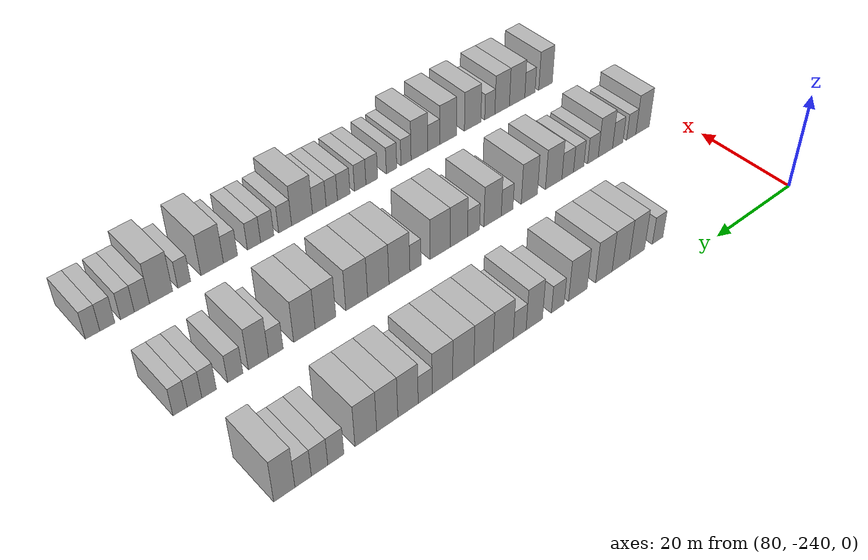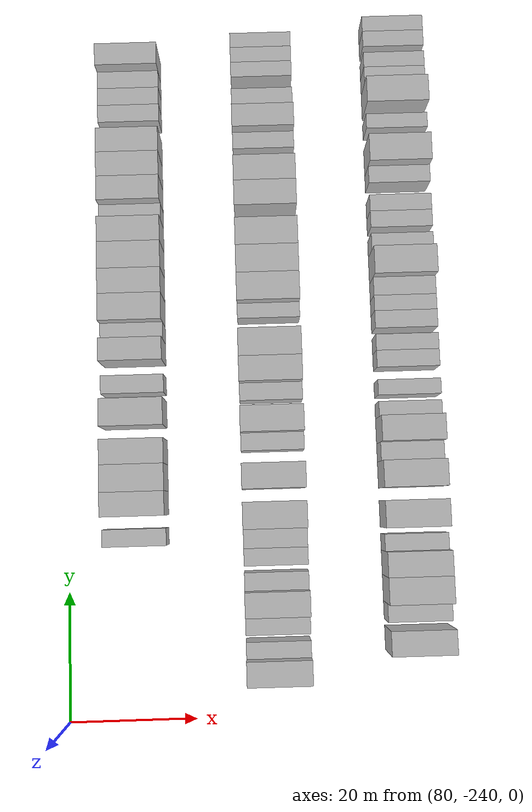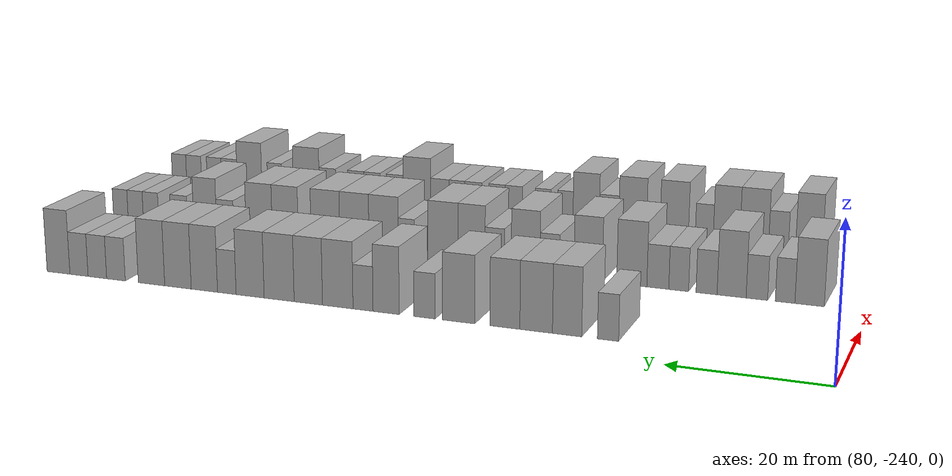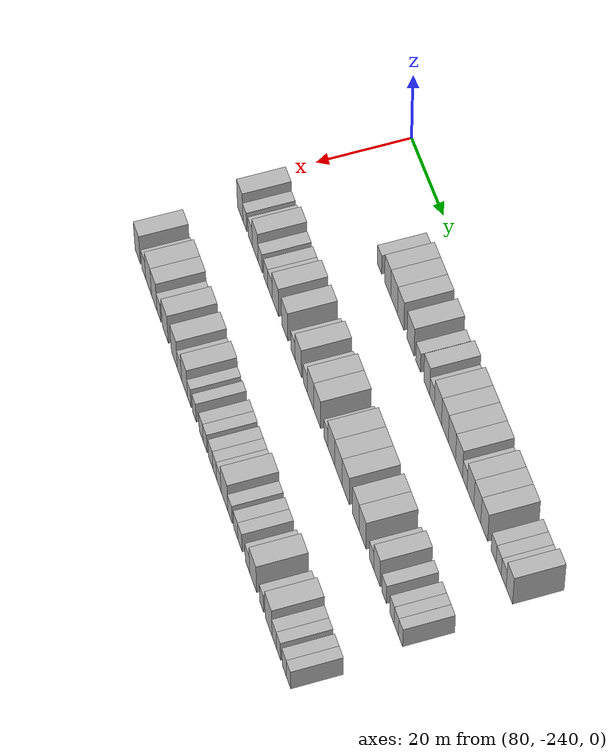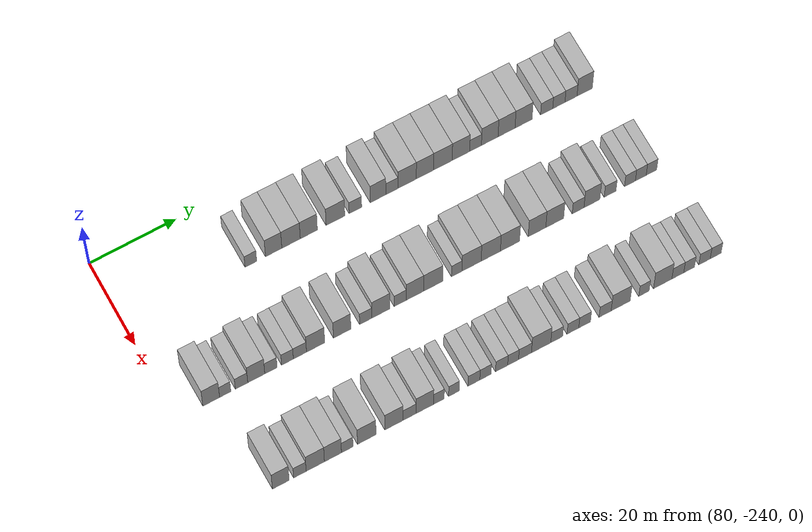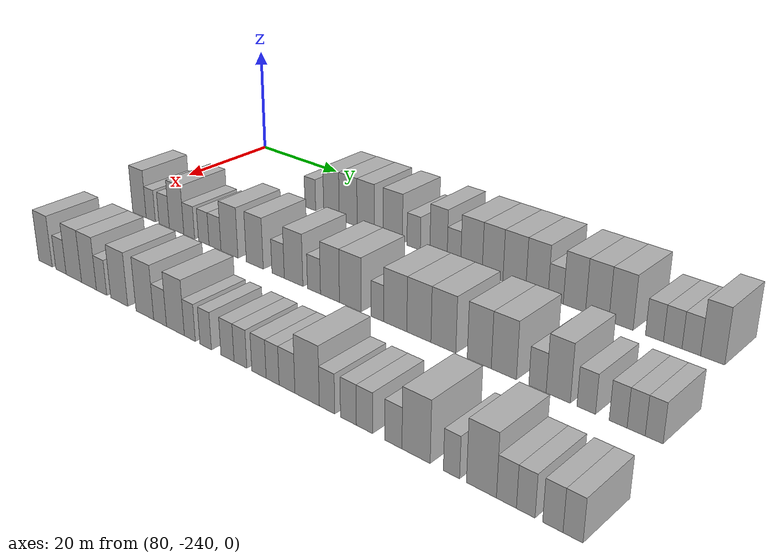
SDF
<sdf version="1.6">
 <world name="default">
  <model name="building_591">
   <static>1</static>
   <pose>91.0000 -211.4596 0 0.000000 0.000000 0.000000</pose>
   <link name="link">
    <pose>0 0 3.00 0 0 0</pose>
    <collision name="collision"><geometry><box><size>10.0000 2.6911 6.0000</size></box></geometry></collision>
    <visual name="visual">
     <cast_shadows>0</cast_shadows>
     <geometry><box><size>10.0000 2.6911 6.0000</size></box></geometry>
     <material>
      <script>
       <uri>model://HANNAS_wall/materials/scripts</uri>
       <uri>model://HANNAS_wall/materials/textures</uri>
       <name>vrc/HANNAS_wall</name>
      </script>
     </material>
    </visual>
   </link>
  </model>
  <model name="building_592">
   <static>1</static>
   <pose>91.0000 -206.2299 0 0.000000 0.000000 0.000000</pose>
   <link name="link">
    <pose>0 0 4.50 0 0 0</pose>
    <collision name="collision"><geometry><box><size>10.0000 3.7683 9.0000</size></box></geometry></collision>
    <visual name="visual">
     <cast_shadows>0</cast_shadows>
     <geometry><box><size>10.0000 3.7683 9.0000</size></box></geometry>
     <material>
      <script>
       <uri>model://HANNAS_wall/materials/scripts</uri>
       <uri>model://HANNAS_wall/materials/textures</uri>
       <name>vrc/HANNAS_wall</name>
      </script>
     </material>
    </visual>
   </link>
  </model>
  <model name="building_593">
   <static>1</static>
   <pose>91.0000 -202.2239 0 0.000000 0.000000 0.000000</pose>
   <link name="link">
    <pose>0 0 4.50 0 0 0</pose>
    <collision name="collision"><geometry><box><size>10.0000 4.2436 9.0000</size></box></geometry></collision>
    <visual name="visual">
     <cast_shadows>0</cast_shadows>
     <geometry><box><size>10.0000 4.2436 9.0000</size></box></geometry>
     <material>
      <script>
       <uri>model://HANNAS_wall/materials/scripts</uri>
       <uri>model://HANNAS_wall/materials/textures</uri>
       <name>vrc/HANNAS_wall</name>
      </script>
     </material>
    </visual>
   </link>
  </model>
  <model name="building_594">
   <static>1</static>
   <pose>91.0000 -198.1293 0 0.000000 0.000000 0.000000</pose>
   <link name="link">
    <pose>0 0 4.50 0 0 0</pose>
    <collision name="collision"><geometry><box><size>10.0000 3.9456 9.0000</size></box></geometry></collision>
    <visual name="visual">
     <cast_shadows>0</cast_shadows>
     <geometry><box><size>10.0000 3.9456 9.0000</size></box></geometry>
     <material>
      <script>
       <uri>model://HANNAS_wall/materials/scripts</uri>
       <uri>model://HANNAS_wall/materials/textures</uri>
       <name>vrc/HANNAS_wall</name>
      </script>
     </material>
    </visual>
   </link>
  </model>
  <model name="building_595">
   <static>1</static>
   <pose>91.0000 -191.9922 0 0.000000 0.000000 0.000000</pose>
   <link name="link">
    <pose>0 0 4.50 0 0 0</pose>
    <collision name="collision"><geometry><box><size>10.0000 4.3284 9.0000</size></box></geometry></collision>
    <visual name="visual">
     <cast_shadows>0</cast_shadows>
     <geometry><box><size>10.0000 4.3284 9.0000</size></box></geometry>
     <material>
      <script>
       <uri>model://HANNAS_wall/materials/scripts</uri>
       <uri>model://HANNAS_wall/materials/textures</uri>
       <name>vrc/HANNAS_wall</name>
      </script>
     </material>
    </visual>
   </link>
  </model>
  <model name="building_596">
   <static>1</static>
   <pose>91.0000 -187.3737 0 0.000000 0.000000 0.000000</pose>
   <link name="link">
    <pose>0 0 3.00 0 0 0</pose>
    <collision name="collision"><geometry><box><size>10.0000 2.9087 6.0000</size></box></geometry></collision>
    <visual name="visual">
     <cast_shadows>0</cast_shadows>
     <geometry><box><size>10.0000 2.9087 6.0000</size></box></geometry>
     <material>
      <script>
       <uri>model://HANNAS_wall/materials/scripts</uri>
       <uri>model://HANNAS_wall/materials/textures</uri>
       <name>vrc/HANNAS_wall</name>
      </script>
     </material>
    </visual>
   </link>
  </model>
  <model name="building_597">
   <static>1</static>
   <pose>91.0000 -182.1130 0 0.000000 0.000000 0.000000</pose>
   <link name="link">
    <pose>0 0 4.50 0 0 0</pose>
    <collision name="collision"><geometry><box><size>10.0000 3.6126 9.0000</size></box></geometry></collision>
    <visual name="visual">
     <cast_shadows>0</cast_shadows>
     <geometry><box><size>10.0000 3.6126 9.0000</size></box></geometry>
     <material>
      <script>
       <uri>model://HANNAS_wall/materials/scripts</uri>
       <uri>model://HANNAS_wall/materials/textures</uri>
       <name>vrc/HANNAS_wall</name>
      </script>
     </material>
    </visual>
   </link>
  </model>
  <model name="building_598">
   <static>1</static>
   <pose>91.0000 -178.9118 0 0.000000 0.000000 0.000000</pose>
   <link name="link">
    <pose>0 0 3.00 0 0 0</pose>
    <collision name="collision"><geometry><box><size>10.0000 2.7897 6.0000</size></box></geometry></collision>
    <visual name="visual">
     <cast_shadows>0</cast_shadows>
     <geometry><box><size>10.0000 2.7897 6.0000</size></box></geometry>
     <material>
      <script>
       <uri>model://HANNAS_wall/materials/scripts</uri>
       <uri>model://HANNAS_wall/materials/textures</uri>
       <name>vrc/HANNAS_wall</name>
      </script>
     </material>
    </visual>
   </link>
  </model>
  <model name="building_599">
   <static>1</static>
   <pose>91.0000 -175.3685 0 0.000000 0.000000 0.000000</pose>
   <link name="link">
    <pose>0 0 4.50 0 0 0</pose>
    <collision name="collision"><geometry><box><size>10.0000 4.2968 9.0000</size></box></geometry></collision>
    <visual name="visual">
     <cast_shadows>0</cast_shadows>
     <geometry><box><size>10.0000 4.2968 9.0000</size></box></geometry>
     <material>
      <script>
       <uri>model://HANNAS_wall/materials/scripts</uri>
       <uri>model://HANNAS_wall/materials/textures</uri>
       <name>vrc/HANNAS_wall</name>
      </script>
     </material>
    </visual>
   </link>
  </model>
  <model name="building_600">
   <static>1</static>
   <pose>91.0000 -171.2025 0 0.000000 0.000000 0.000000</pose>
   <link name="link">
    <pose>0 0 4.50 0 0 0</pose>
    <collision name="collision"><geometry><box><size>10.0000 4.0353 9.0000</size></box></geometry></collision>
    <visual name="visual">
     <cast_shadows>0</cast_shadows>
     <geometry><box><size>10.0000 4.0353 9.0000</size></box></geometry>
     <material>
      <script>
       <uri>model://HANNAS_wall/materials/scripts</uri>
       <uri>model://HANNAS_wall/materials/textures</uri>
       <name>vrc/HANNAS_wall</name>
      </script>
     </material>
    </visual>
   </link>
  </model>
  <model name="building_601">
   <static>1</static>
   <pose>91.0000 -167.0201 0 0.000000 0.000000 0.000000</pose>
   <link name="link">
    <pose>0 0 4.50 0 0 0</pose>
    <collision name="collision"><geometry><box><size>10.0000 4.3295 9.0000</size></box></geometry></collision>
    <visual name="visual">
     <cast_shadows>0</cast_shadows>
     <geometry><box><size>10.0000 4.3295 9.0000</size></box></geometry>
     <material>
      <script>
       <uri>model://HANNAS_wall/materials/scripts</uri>
       <uri>model://HANNAS_wall/materials/textures</uri>
       <name>vrc/HANNAS_wall</name>
      </script>
     </material>
    </visual>
   </link>
  </model>
  <model name="building_602">
   <static>1</static>
   <pose>91.0000 -162.8097 0 0.000000 0.000000 0.000000</pose>
   <link name="link">
    <pose>0 0 4.50 0 0 0</pose>
    <collision name="collision"><geometry><box><size>10.0000 4.0912 9.0000</size></box></geometry></collision>
    <visual name="visual">
     <cast_shadows>0</cast_shadows>
     <geometry><box><size>10.0000 4.0912 9.0000</size></box></geometry>
     <material>
      <script>
       <uri>model://HANNAS_wall/materials/scripts</uri>
       <uri>model://HANNAS_wall/materials/textures</uri>
       <name>vrc/HANNAS_wall</name>
      </script>
     </material>
    </visual>
   </link>
  </model>
  <model name="building_603">
   <static>1</static>
   <pose>91.0000 -159.3946 0 0.000000 0.000000 0.000000</pose>
   <link name="link">
    <pose>0 0 3.00 0 0 0</pose>
    <collision name="collision"><geometry><box><size>10.0000 2.7390 6.0000</size></box></geometry></collision>
    <visual name="visual">
     <cast_shadows>0</cast_shadows>
     <geometry><box><size>10.0000 2.7390 6.0000</size></box></geometry>
     <material>
      <script>
       <uri>model://HANNAS_wall/materials/scripts</uri>
       <uri>model://HANNAS_wall/materials/textures</uri>
       <name>vrc/HANNAS_wall</name>
      </script>
     </material>
    </visual>
   </link>
  </model>
  <model name="building_604">
   <static>1</static>
   <pose>91.0000 -156.0715 0 0.000000 0.000000 0.000000</pose>
   <link name="link">
    <pose>0 0 4.50 0 0 0</pose>
    <collision name="collision"><geometry><box><size>10.0000 3.9071 9.0000</size></box></geometry></collision>
    <visual name="visual">
     <cast_shadows>0</cast_shadows>
     <geometry><box><size>10.0000 3.9071 9.0000</size></box></geometry>
     <material>
      <script>
       <uri>model://HANNAS_wall/materials/scripts</uri>
       <uri>model://HANNAS_wall/materials/textures</uri>
       <name>vrc/HANNAS_wall</name>
      </script>
     </material>
    </visual>
   </link>
  </model>
  <model name="building_605">
   <static>1</static>
   <pose>91.0000 -152.1241 0 0.000000 0.000000 0.000000</pose>
   <link name="link">
    <pose>0 0 4.50 0 0 0</pose>
    <collision name="collision"><geometry><box><size>10.0000 3.9877 9.0000</size></box></geometry></collision>
    <visual name="visual">
     <cast_shadows>0</cast_shadows>
     <geometry><box><size>10.0000 3.9877 9.0000</size></box></geometry>
     <material>
      <script>
       <uri>model://HANNAS_wall/materials/scripts</uri>
       <uri>model://HANNAS_wall/materials/textures</uri>
       <name>vrc/HANNAS_wall</name>
      </script>
     </material>
    </visual>
   </link>
  </model>
  <model name="building_606">
   <static>1</static>
   <pose>91.0000 -148.1244 0 0.000000 0.000000 0.000000</pose>
   <link name="link">
    <pose>0 0 4.50 0 0 0</pose>
    <collision name="collision"><geometry><box><size>10.0000 4.0119 9.0000</size></box></geometry></collision>
    <visual name="visual">
     <cast_shadows>0</cast_shadows>
     <geometry><box><size>10.0000 4.0119 9.0000</size></box></geometry>
     <material>
      <script>
       <uri>model://HANNAS_wall/materials/scripts</uri>
       <uri>model://HANNAS_wall/materials/textures</uri>
       <name>vrc/HANNAS_wall</name>
      </script>
     </material>
    </visual>
   </link>
  </model>
  <model name="building_607">
   <static>1</static>
   <pose>91.0000 -142.6824 0 0.000000 0.000000 0.000000</pose>
   <link name="link">
    <pose>0 0 3.00 0 0 0</pose>
    <collision name="collision"><geometry><box><size>10.0000 2.8721 6.0000</size></box></geometry></collision>
    <visual name="visual">
     <cast_shadows>0</cast_shadows>
     <geometry><box><size>10.0000 2.8721 6.0000</size></box></geometry>
     <material>
      <script>
       <uri>model://HANNAS_wall/materials/scripts</uri>
       <uri>model://HANNAS_wall/materials/textures</uri>
       <name>vrc/HANNAS_wall</name>
      </script>
     </material>
    </visual>
   </link>
  </model>
  <model name="building_608">
   <static>1</static>
   <pose>91.0000 -139.8029 0 0.000000 0.000000 0.000000</pose>
   <link name="link">
    <pose>0 0 3.00 0 0 0</pose>
    <collision name="collision"><geometry><box><size>10.0000 2.8870 6.0000</size></box></geometry></collision>
    <visual name="visual">
     <cast_shadows>0</cast_shadows>
     <geometry><box><size>10.0000 2.8870 6.0000</size></box></geometry>
     <material>
      <script>
       <uri>model://HANNAS_wall/materials/scripts</uri>
       <uri>model://HANNAS_wall/materials/textures</uri>
       <name>vrc/HANNAS_wall</name>
      </script>
     </material>
    </visual>
   </link>
  </model>
  <model name="building_609">
   <static>1</static>
   <pose>91.0000 -136.9374 0 0.000000 0.000000 0.000000</pose>
   <link name="link">
    <pose>0 0 3.00 0 0 0</pose>
    <collision name="collision"><geometry><box><size>10.0000 2.8440 6.0000</size></box></geometry></collision>
    <visual name="visual">
     <cast_shadows>0</cast_shadows>
     <geometry><box><size>10.0000 2.8440 6.0000</size></box></geometry>
     <material>
      <script>
       <uri>model://HANNAS_wall/materials/scripts</uri>
       <uri>model://HANNAS_wall/materials/textures</uri>
       <name>vrc/HANNAS_wall</name>
      </script>
     </material>
    </visual>
   </link>
  </model>
  <model name="building_610">
   <static>1</static>
   <pose>91.0000 -133.7149 0 0.000000 0.000000 0.000000</pose>
   <link name="link">
    <pose>0 0 4.50 0 0 0</pose>
    <collision name="collision"><geometry><box><size>10.0000 3.6010 9.0000</size></box></geometry></collision>
    <visual name="visual">
     <cast_shadows>0</cast_shadows>
     <geometry><box><size>10.0000 3.6010 9.0000</size></box></geometry>
     <material>
      <script>
       <uri>model://HANNAS_wall/materials/scripts</uri>
       <uri>model://HANNAS_wall/materials/textures</uri>
       <name>vrc/HANNAS_wall</name>
      </script>
     </material>
    </visual>
   </link>
  </model>
  <model name="building_774">
   <static>1</static>
   <pose>113.0000 -232.2765 0 0.000000 0.000000 0.000000</pose>
   <link name="link">
    <pose>0 0 4.50 0 0 0</pose>
    <collision name="collision"><geometry><box><size>10.0000 3.7931 9.0000</size></box></geometry></collision>
    <visual name="visual">
     <cast_shadows>0</cast_shadows>
     <geometry><box><size>10.0000 3.7931 9.0000</size></box></geometry>
     <material>
      <script>
       <uri>model://HANNAS_wall/materials/scripts</uri>
       <uri>model://HANNAS_wall/materials/textures</uri>
       <name>vrc/HANNAS_wall</name>
      </script>
     </material>
    </visual>
   </link>
  </model>
  <model name="building_775">
   <static>1</static>
   <pose>113.0000 -229.1039 0 0.000000 0.000000 0.000000</pose>
   <link name="link">
    <pose>0 0 3.00 0 0 0</pose>
    <collision name="collision"><geometry><box><size>10.0000 2.5521 6.0000</size></box></geometry></collision>
    <visual name="visual">
     <cast_shadows>0</cast_shadows>
     <geometry><box><size>10.0000 2.5521 6.0000</size></box></geometry>
     <material>
      <script>
       <uri>model://HANNAS_wall/materials/scripts</uri>
       <uri>model://HANNAS_wall/materials/textures</uri>
       <name>vrc/HANNAS_wall</name>
      </script>
     </material>
    </visual>
   </link>
  </model>
  <model name="building_776">
   <static>1</static>
   <pose>113.0000 -225.4137 0 0.000000 0.000000 0.000000</pose>
   <link name="link">
    <pose>0 0 3.00 0 0 0</pose>
    <collision name="collision"><geometry><box><size>10.0000 2.8284 6.0000</size></box></geometry></collision>
    <visual name="visual">
     <cast_shadows>0</cast_shadows>
     <geometry><box><size>10.0000 2.8284 6.0000</size></box></geometry>
     <material>
      <script>
       <uri>model://HANNAS_wall/materials/scripts</uri>
       <uri>model://HANNAS_wall/materials/textures</uri>
       <name>vrc/HANNAS_wall</name>
      </script>
     </material>
    </visual>
   </link>
  </model>
  <model name="building_777">
   <static>1</static>
   <pose>113.0000 -222.0663 0 0.000000 0.000000 0.000000</pose>
   <link name="link">
    <pose>0 0 4.50 0 0 0</pose>
    <collision name="collision"><geometry><box><size>10.0000 3.8664 9.0000</size></box></geometry></collision>
    <visual name="visual">
     <cast_shadows>0</cast_shadows>
     <geometry><box><size>10.0000 3.8664 9.0000</size></box></geometry>
     <material>
      <script>
       <uri>model://HANNAS_wall/materials/scripts</uri>
       <uri>model://HANNAS_wall/materials/textures</uri>
       <name>vrc/HANNAS_wall</name>
      </script>
     </material>
    </visual>
   </link>
  </model>
  <model name="building_778">
   <static>1</static>
   <pose>113.0000 -218.7258 0 0.000000 0.000000 0.000000</pose>
   <link name="link">
    <pose>0 0 3.00 0 0 0</pose>
    <collision name="collision"><geometry><box><size>10.0000 2.8146 6.0000</size></box></geometry></collision>
    <visual name="visual">
     <cast_shadows>0</cast_shadows>
     <geometry><box><size>10.0000 2.8146 6.0000</size></box></geometry>
     <material>
      <script>
       <uri>model://HANNAS_wall/materials/scripts</uri>
       <uri>model://HANNAS_wall/materials/textures</uri>
       <name>vrc/HANNAS_wall</name>
      </script>
     </material>
    </visual>
   </link>
  </model>
  <model name="building_779">
   <static>1</static>
   <pose>113.0000 -214.9746 0 0.000000 0.000000 0.000000</pose>
   <link name="link">
    <pose>0 0 3.00 0 0 0</pose>
    <collision name="collision"><geometry><box><size>10.0000 2.6877 6.0000</size></box></geometry></collision>
    <visual name="visual">
     <cast_shadows>0</cast_shadows>
     <geometry><box><size>10.0000 2.6877 6.0000</size></box></geometry>
     <material>
      <script>
       <uri>model://HANNAS_wall/materials/scripts</uri>
       <uri>model://HANNAS_wall/materials/textures</uri>
       <name>vrc/HANNAS_wall</name>
      </script>
     </material>
    </visual>
   </link>
  </model>
  <model name="building_780">
   <static>1</static>
   <pose>113.0000 -212.1339 0 0.000000 0.000000 0.000000</pose>
   <link name="link">
    <pose>0 0 3.00 0 0 0</pose>
    <collision name="collision"><geometry><box><size>10.0000 2.9936 6.0000</size></box></geometry></collision>
    <visual name="visual">
     <cast_shadows>0</cast_shadows>
     <geometry><box><size>10.0000 2.9936 6.0000</size></box></geometry>
     <material>
      <script>
       <uri>model://HANNAS_wall/materials/scripts</uri>
       <uri>model://HANNAS_wall/materials/textures</uri>
       <name>vrc/HANNAS_wall</name>
      </script>
     </material>
    </visual>
   </link>
  </model>
  <model name="building_781">
   <static>1</static>
   <pose>113.0000 -208.5541 0 0.000000 0.000000 0.000000</pose>
   <link name="link">
    <pose>0 0 4.50 0 0 0</pose>
    <collision name="collision"><geometry><box><size>10.0000 4.1662 9.0000</size></box></geometry></collision>
    <visual name="visual">
     <cast_shadows>0</cast_shadows>
     <geometry><box><size>10.0000 4.1662 9.0000</size></box></geometry>
     <material>
      <script>
       <uri>model://HANNAS_wall/materials/scripts</uri>
       <uri>model://HANNAS_wall/materials/textures</uri>
       <name>vrc/HANNAS_wall</name>
      </script>
     </material>
    </visual>
   </link>
  </model>
  <model name="building_782">
   <static>1</static>
   <pose>113.0000 -202.4768 0 0.000000 0.000000 0.000000</pose>
   <link name="link">
    <pose>0 0 4.50 0 0 0</pose>
    <collision name="collision"><geometry><box><size>10.0000 3.9884 9.0000</size></box></geometry></collision>
    <visual name="visual">
     <cast_shadows>0</cast_shadows>
     <geometry><box><size>10.0000 3.9884 9.0000</size></box></geometry>
     <material>
      <script>
       <uri>model://HANNAS_wall/materials/scripts</uri>
       <uri>model://HANNAS_wall/materials/textures</uri>
       <name>vrc/HANNAS_wall</name>
      </script>
     </material>
    </visual>
   </link>
  </model>
  <model name="building_783">
   <static>1</static>
   <pose>113.0000 -197.0778 0 0.000000 0.000000 0.000000</pose>
   <link name="link">
    <pose>0 0 3.00 0 0 0</pose>
    <collision name="collision"><geometry><box><size>10.0000 2.8095 6.0000</size></box></geometry></collision>
    <visual name="visual">
     <cast_shadows>0</cast_shadows>
     <geometry><box><size>10.0000 2.8095 6.0000</size></box></geometry>
     <material>
      <script>
       <uri>model://HANNAS_wall/materials/scripts</uri>
       <uri>model://HANNAS_wall/materials/textures</uri>
       <name>vrc/HANNAS_wall</name>
      </script>
     </material>
    </visual>
   </link>
  </model>
  <model name="building_784">
   <static>1</static>
   <pose>113.0000 -193.6106 0 0.000000 0.000000 0.000000</pose>
   <link name="link">
    <pose>0 0 4.50 0 0 0</pose>
    <collision name="collision"><geometry><box><size>10.0000 4.1251 9.0000</size></box></geometry></collision>
    <visual name="visual">
     <cast_shadows>0</cast_shadows>
     <geometry><box><size>10.0000 4.1251 9.0000</size></box></geometry>
     <material>
      <script>
       <uri>model://HANNAS_wall/materials/scripts</uri>
       <uri>model://HANNAS_wall/materials/textures</uri>
       <name>vrc/HANNAS_wall</name>
      </script>
     </material>
    </visual>
   </link>
  </model>
  <model name="building_785">
   <static>1</static>
   <pose>113.0000 -189.1490 0 0.000000 0.000000 0.000000</pose>
   <link name="link">
    <pose>0 0 3.00 0 0 0</pose>
    <collision name="collision"><geometry><box><size>10.0000 2.7982 6.0000</size></box></geometry></collision>
    <visual name="visual">
     <cast_shadows>0</cast_shadows>
     <geometry><box><size>10.0000 2.7982 6.0000</size></box></geometry>
     <material>
      <script>
       <uri>model://HANNAS_wall/materials/scripts</uri>
       <uri>model://HANNAS_wall/materials/textures</uri>
       <name>vrc/HANNAS_wall</name>
      </script>
     </material>
    </visual>
   </link>
  </model>
  <model name="building_786">
   <static>1</static>
   <pose>113.0000 -185.7588 0 0.000000 0.000000 0.000000</pose>
   <link name="link">
    <pose>0 0 4.50 0 0 0</pose>
    <collision name="collision"><geometry><box><size>10.0000 3.9821 9.0000</size></box></geometry></collision>
    <visual name="visual">
     <cast_shadows>0</cast_shadows>
     <geometry><box><size>10.0000 3.9821 9.0000</size></box></geometry>
     <material>
      <script>
       <uri>model://HANNAS_wall/materials/scripts</uri>
       <uri>model://HANNAS_wall/materials/textures</uri>
       <name>vrc/HANNAS_wall</name>
      </script>
     </material>
    </visual>
   </link>
  </model>
  <model name="building_787">
   <static>1</static>
   <pose>113.0000 -181.5563 0 0.000000 0.000000 0.000000</pose>
   <link name="link">
    <pose>0 0 4.50 0 0 0</pose>
    <collision name="collision"><geometry><box><size>10.0000 4.4228 9.0000</size></box></geometry></collision>
    <visual name="visual">
     <cast_shadows>0</cast_shadows>
     <geometry><box><size>10.0000 4.4228 9.0000</size></box></geometry>
     <material>
      <script>
       <uri>model://HANNAS_wall/materials/scripts</uri>
       <uri>model://HANNAS_wall/materials/textures</uri>
       <name>vrc/HANNAS_wall</name>
      </script>
     </material>
    </visual>
   </link>
  </model>
  <model name="building_788">
   <static>1</static>
   <pose>113.0000 -176.1302 0 0.000000 0.000000 0.000000</pose>
   <link name="link">
    <pose>0 0 3.00 0 0 0</pose>
    <collision name="collision"><geometry><box><size>10.0000 2.4295 6.0000</size></box></geometry></collision>
    <visual name="visual">
     <cast_shadows>0</cast_shadows>
     <geometry><box><size>10.0000 2.4295 6.0000</size></box></geometry>
     <material>
      <script>
       <uri>model://HANNAS_wall/materials/scripts</uri>
       <uri>model://HANNAS_wall/materials/textures</uri>
       <name>vrc/HANNAS_wall</name>
      </script>
     </material>
    </visual>
   </link>
  </model>
  <model name="building_789">
   <static>1</static>
   <pose>113.0000 -172.6863 0 0.000000 0.000000 0.000000</pose>
   <link name="link">
    <pose>0 0 4.50 0 0 0</pose>
    <collision name="collision"><geometry><box><size>10.0000 4.4583 9.0000</size></box></geometry></collision>
    <visual name="visual">
     <cast_shadows>0</cast_shadows>
     <geometry><box><size>10.0000 4.4583 9.0000</size></box></geometry>
     <material>
      <script>
       <uri>model://HANNAS_wall/materials/scripts</uri>
       <uri>model://HANNAS_wall/materials/textures</uri>
       <name>vrc/HANNAS_wall</name>
      </script>
     </material>
    </visual>
   </link>
  </model>
  <model name="building_790">
   <static>1</static>
   <pose>113.0000 -168.2217 0 0.000000 0.000000 0.000000</pose>
   <link name="link">
    <pose>0 0 4.50 0 0 0</pose>
    <collision name="collision"><geometry><box><size>10.0000 4.4710 9.0000</size></box></geometry></collision>
    <visual name="visual">
     <cast_shadows>0</cast_shadows>
     <geometry><box><size>10.0000 4.4710 9.0000</size></box></geometry>
     <material>
      <script>
       <uri>model://HANNAS_wall/materials/scripts</uri>
       <uri>model://HANNAS_wall/materials/textures</uri>
       <name>vrc/HANNAS_wall</name>
      </script>
     </material>
    </visual>
   </link>
  </model>
  <model name="building_791">
   <static>1</static>
   <pose>113.0000 -163.7555 0 0.000000 0.000000 0.000000</pose>
   <link name="link">
    <pose>0 0 4.50 0 0 0</pose>
    <collision name="collision"><geometry><box><size>10.0000 4.4614 9.0000</size></box></geometry></collision>
    <visual name="visual">
     <cast_shadows>0</cast_shadows>
     <geometry><box><size>10.0000 4.4614 9.0000</size></box></geometry>
     <material>
      <script>
       <uri>model://HANNAS_wall/materials/scripts</uri>
       <uri>model://HANNAS_wall/materials/textures</uri>
       <name>vrc/HANNAS_wall</name>
      </script>
     </material>
    </visual>
   </link>
  </model>
  <model name="building_792">
   <static>1</static>
   <pose>113.0000 -157.4747 0 0.000000 0.000000 0.000000</pose>
   <link name="link">
    <pose>0 0 4.50 0 0 0</pose>
    <collision name="collision"><geometry><box><size>10.0000 4.1002 9.0000</size></box></geometry></collision>
    <visual name="visual">
     <cast_shadows>0</cast_shadows>
     <geometry><box><size>10.0000 4.1002 9.0000</size></box></geometry>
     <material>
      <script>
       <uri>model://HANNAS_wall/materials/scripts</uri>
       <uri>model://HANNAS_wall/materials/textures</uri>
       <name>vrc/HANNAS_wall</name>
      </script>
     </material>
    </visual>
   </link>
  </model>
  <model name="building_793">
   <static>1</static>
   <pose>113.0000 -153.3408 0 0.000000 0.000000 0.000000</pose>
   <link name="link">
    <pose>0 0 4.50 0 0 0</pose>
    <collision name="collision"><geometry><box><size>10.0000 4.1676 9.0000</size></box></geometry></collision>
    <visual name="visual">
     <cast_shadows>0</cast_shadows>
     <geometry><box><size>10.0000 4.1676 9.0000</size></box></geometry>
     <material>
      <script>
       <uri>model://HANNAS_wall/materials/scripts</uri>
       <uri>model://HANNAS_wall/materials/textures</uri>
       <name>vrc/HANNAS_wall</name>
      </script>
     </material>
    </visual>
   </link>
  </model>
  <model name="building_794">
   <static>1</static>
   <pose>113.0000 -147.8810 0 0.000000 0.000000 0.000000</pose>
   <link name="link">
    <pose>0 0 3.00 0 0 0</pose>
    <collision name="collision"><geometry><box><size>10.0000 2.7519 6.0000</size></box></geometry></collision>
    <visual name="visual">
     <cast_shadows>0</cast_shadows>
     <geometry><box><size>10.0000 2.7519 6.0000</size></box></geometry>
     <material>
      <script>
       <uri>model://HANNAS_wall/materials/scripts</uri>
       <uri>model://HANNAS_wall/materials/textures</uri>
       <name>vrc/HANNAS_wall</name>
      </script>
     </material>
    </visual>
   </link>
  </model>
  <model name="building_795">
   <static>1</static>
   <pose>113.0000 -144.6400 0 0.000000 0.000000 0.000000</pose>
   <link name="link">
    <pose>0 0 4.50 0 0 0</pose>
    <collision name="collision"><geometry><box><size>10.0000 3.7302 9.0000</size></box></geometry></collision>
    <visual name="visual">
     <cast_shadows>0</cast_shadows>
     <geometry><box><size>10.0000 3.7302 9.0000</size></box></geometry>
     <material>
      <script>
       <uri>model://HANNAS_wall/materials/scripts</uri>
       <uri>model://HANNAS_wall/materials/textures</uri>
       <name>vrc/HANNAS_wall</name>
      </script>
     </material>
    </visual>
   </link>
  </model>
  <model name="building_796">
   <static>1</static>
   <pose>113.0000 -140.3870 0 0.000000 0.000000 0.000000</pose>
   <link name="link">
    <pose>0 0 3.00 0 0 0</pose>
    <collision name="collision"><geometry><box><size>10.0000 2.7757 6.0000</size></box></geometry></collision>
    <visual name="visual">
     <cast_shadows>0</cast_shadows>
     <geometry><box><size>10.0000 2.7757 6.0000</size></box></geometry>
     <material>
      <script>
       <uri>model://HANNAS_wall/materials/scripts</uri>
       <uri>model://HANNAS_wall/materials/textures</uri>
       <name>vrc/HANNAS_wall</name>
      </script>
     </material>
    </visual>
   </link>
  </model>
  <model name="building_797">
   <static>1</static>
   <pose>113.0000 -135.7184 0 0.000000 0.000000 0.000000</pose>
   <link name="link">
    <pose>0 0 3.00 0 0 0</pose>
    <collision name="collision"><geometry><box><size>10.0000 2.5616 6.0000</size></box></geometry></collision>
    <visual name="visual">
     <cast_shadows>0</cast_shadows>
     <geometry><box><size>10.0000 2.5616 6.0000</size></box></geometry>
     <material>
      <script>
       <uri>model://HANNAS_wall/materials/scripts</uri>
       <uri>model://HANNAS_wall/materials/textures</uri>
       <name>vrc/HANNAS_wall</name>
      </script>
     </material>
    </visual>
   </link>
  </model>
  <model name="building_798">
   <static>1</static>
   <pose>113.0000 -133.1621 0 0.000000 0.000000 0.000000</pose>
   <link name="link">
    <pose>0 0 3.00 0 0 0</pose>
    <collision name="collision"><geometry><box><size>10.0000 2.5509 6.0000</size></box></geometry></collision>
    <visual name="visual">
     <cast_shadows>0</cast_shadows>
     <geometry><box><size>10.0000 2.5509 6.0000</size></box></geometry>
     <material>
      <script>
       <uri>model://HANNAS_wall/materials/scripts</uri>
       <uri>model://HANNAS_wall/materials/textures</uri>
       <name>vrc/HANNAS_wall</name>
      </script>
     </material>
    </visual>
   </link>
  </model>
  <model name="building_799">
   <static>1</static>
   <pose>113.0000 -130.6572 0 0.000000 0.000000 0.000000</pose>
   <link name="link">
    <pose>0 0 3.00 0 0 0</pose>
    <collision name="collision"><geometry><box><size>10.0000 2.4588 6.0000</size></box></geometry></collision>
    <visual name="visual">
     <cast_shadows>0</cast_shadows>
     <geometry><box><size>10.0000 2.4588 6.0000</size></box></geometry>
     <material>
      <script>
       <uri>model://HANNAS_wall/materials/scripts</uri>
       <uri>model://HANNAS_wall/materials/textures</uri>
       <name>vrc/HANNAS_wall</name>
      </script>
     </material>
    </visual>
   </link>
  </model>
  <model name="building_964">
   <static>1</static>
   <pose>135.0000 -228.3929 0 0.000000 0.000000 0.000000</pose>
   <link name="link">
    <pose>0 0 4.50 0 0 0</pose>
    <collision name="collision"><geometry><box><size>10.0000 3.7808 9.0000</size></box></geometry></collision>
    <visual name="visual">
     <cast_shadows>0</cast_shadows>
     <geometry><box><size>10.0000 3.7808 9.0000</size></box></geometry>
     <material>
      <script>
       <uri>model://HANNAS_wall/materials/scripts</uri>
       <uri>model://HANNAS_wall/materials/textures</uri>
       <name>vrc/HANNAS_wall</name>
      </script>
     </material>
    </visual>
   </link>
  </model>
  <model name="building_965">
   <static>1</static>
   <pose>135.0000 -224.0910 0 0.000000 0.000000 0.000000</pose>
   <link name="link">
    <pose>0 0 3.00 0 0 0</pose>
    <collision name="collision"><geometry><box><size>10.0000 2.8231 6.0000</size></box></geometry></collision>
    <visual name="visual">
     <cast_shadows>0</cast_shadows>
     <geometry><box><size>10.0000 2.8231 6.0000</size></box></geometry>
     <material>
      <script>
       <uri>model://HANNAS_wall/materials/scripts</uri>
       <uri>model://HANNAS_wall/materials/textures</uri>
       <name>vrc/HANNAS_wall</name>
      </script>
     </material>
    </visual>
   </link>
  </model>
  <model name="building_966">
   <static>1</static>
   <pose>135.0000 -220.6110 0 0.000000 0.000000 0.000000</pose>
   <link name="link">
    <pose>0 0 4.50 0 0 0</pose>
    <collision name="collision"><geometry><box><size>10.0000 4.1368 9.0000</size></box></geometry></collision>
    <visual name="visual">
     <cast_shadows>0</cast_shadows>
     <geometry><box><size>10.0000 4.1368 9.0000</size></box></geometry>
     <material>
      <script>
       <uri>model://HANNAS_wall/materials/scripts</uri>
       <uri>model://HANNAS_wall/materials/textures</uri>
       <name>vrc/HANNAS_wall</name>
      </script>
     </material>
    </visual>
   </link>
  </model>
  <model name="building_967">
   <static>1</static>
   <pose>135.0000 -216.6161 0 0.000000 0.000000 0.000000</pose>
   <link name="link">
    <pose>0 0 4.50 0 0 0</pose>
    <collision name="collision"><geometry><box><size>10.0000 3.8530 9.0000</size></box></geometry></collision>
    <visual name="visual">
     <cast_shadows>0</cast_shadows>
     <geometry><box><size>10.0000 3.8530 9.0000</size></box></geometry>
     <material>
      <script>
       <uri>model://HANNAS_wall/materials/scripts</uri>
       <uri>model://HANNAS_wall/materials/textures</uri>
       <name>vrc/HANNAS_wall</name>
      </script>
     </material>
    </visual>
   </link>
  </model>
  <model name="building_968">
   <static>1</static>
   <pose>135.0000 -213.3749 0 0.000000 0.000000 0.000000</pose>
   <link name="link">
    <pose>0 0 3.00 0 0 0</pose>
    <collision name="collision"><geometry><box><size>10.0000 2.6295 6.0000</size></box></geometry></collision>
    <visual name="visual">
     <cast_shadows>0</cast_shadows>
     <geometry><box><size>10.0000 2.6295 6.0000</size></box></geometry>
     <material>
      <script>
       <uri>model://HANNAS_wall/materials/scripts</uri>
       <uri>model://HANNAS_wall/materials/textures</uri>
       <name>vrc/HANNAS_wall</name>
      </script>
     </material>
    </visual>
   </link>
  </model>
  <model name="building_969">
   <static>1</static>
   <pose>135.0000 -208.9542 0 0.000000 0.000000 0.000000</pose>
   <link name="link">
    <pose>0 0 4.50 0 0 0</pose>
    <collision name="collision"><geometry><box><size>10.0000 4.2120 9.0000</size></box></geometry></collision>
    <visual name="visual">
     <cast_shadows>0</cast_shadows>
     <geometry><box><size>10.0000 4.2120 9.0000</size></box></geometry>
     <material>
      <script>
       <uri>model://HANNAS_wall/materials/scripts</uri>
       <uri>model://HANNAS_wall/materials/textures</uri>
       <name>vrc/HANNAS_wall</name>
      </script>
     </material>
    </visual>
   </link>
  </model>
  <model name="building_970">
   <static>1</static>
   <pose>135.0000 -202.7575 0 0.000000 0.000000 0.000000</pose>
   <link name="link">
    <pose>0 0 4.50 0 0 0</pose>
    <collision name="collision"><geometry><box><size>10.0000 4.1814 9.0000</size></box></geometry></collision>
    <visual name="visual">
     <cast_shadows>0</cast_shadows>
     <geometry><box><size>10.0000 4.1814 9.0000</size></box></geometry>
     <material>
      <script>
       <uri>model://HANNAS_wall/materials/scripts</uri>
       <uri>model://HANNAS_wall/materials/textures</uri>
       <name>vrc/HANNAS_wall</name>
      </script>
     </material>
    </visual>
   </link>
  </model>
  <model name="building_971">
   <static>1</static>
   <pose>135.0000 -199.1907 0 0.000000 0.000000 0.000000</pose>
   <link name="link">
    <pose>0 0 3.00 0 0 0</pose>
    <collision name="collision"><geometry><box><size>10.0000 2.9524 6.0000</size></box></geometry></collision>
    <visual name="visual">
     <cast_shadows>0</cast_shadows>
     <geometry><box><size>10.0000 2.9524 6.0000</size></box></geometry>
     <material>
      <script>
       <uri>model://HANNAS_wall/materials/scripts</uri>
       <uri>model://HANNAS_wall/materials/textures</uri>
       <name>vrc/HANNAS_wall</name>
      </script>
     </material>
    </visual>
   </link>
  </model>
  <model name="building_972">
   <static>1</static>
   <pose>135.0000 -195.7100 0 0.000000 0.000000 0.000000</pose>
   <link name="link">
    <pose>0 0 4.50 0 0 0</pose>
    <collision name="collision"><geometry><box><size>10.0000 4.0090 9.0000</size></box></geometry></collision>
    <visual name="visual">
     <cast_shadows>0</cast_shadows>
     <geometry><box><size>10.0000 4.0090 9.0000</size></box></geometry>
     <material>
      <script>
       <uri>model://HANNAS_wall/materials/scripts</uri>
       <uri>model://HANNAS_wall/materials/textures</uri>
       <name>vrc/HANNAS_wall</name>
      </script>
     </material>
    </visual>
   </link>
  </model>
  <model name="building_973">
   <static>1</static>
   <pose>135.0000 -192.5021 0 0.000000 0.000000 0.000000</pose>
   <link name="link">
    <pose>0 0 3.00 0 0 0</pose>
    <collision name="collision"><geometry><box><size>10.0000 2.4068 6.0000</size></box></geometry></collision>
    <visual name="visual">
     <cast_shadows>0</cast_shadows>
     <geometry><box><size>10.0000 2.4068 6.0000</size></box></geometry>
     <material>
      <script>
       <uri>model://HANNAS_wall/materials/scripts</uri>
       <uri>model://HANNAS_wall/materials/textures</uri>
       <name>vrc/HANNAS_wall</name>
      </script>
     </material>
    </visual>
   </link>
  </model>
  <model name="building_974">
   <static>1</static>
   <pose>135.0000 -189.0735 0 0.000000 0.000000 0.000000</pose>
   <link name="link">
    <pose>0 0 3.00 0 0 0</pose>
    <collision name="collision"><geometry><box><size>10.0000 2.4504 6.0000</size></box></geometry></collision>
    <visual name="visual">
     <cast_shadows>0</cast_shadows>
     <geometry><box><size>10.0000 2.4504 6.0000</size></box></geometry>
     <material>
      <script>
       <uri>model://HANNAS_wall/materials/scripts</uri>
       <uri>model://HANNAS_wall/materials/textures</uri>
       <name>vrc/HANNAS_wall</name>
      </script>
     </material>
    </visual>
   </link>
  </model>
  <model name="building_975">
   <static>1</static>
   <pose>135.0000 -184.4931 0 0.000000 0.000000 0.000000</pose>
   <link name="link">
    <pose>0 0 3.00 0 0 0</pose>
    <collision name="collision"><geometry><box><size>10.0000 2.7104 6.0000</size></box></geometry></collision>
    <visual name="visual">
     <cast_shadows>0</cast_shadows>
     <geometry><box><size>10.0000 2.7104 6.0000</size></box></geometry>
     <material>
      <script>
       <uri>model://HANNAS_wall/materials/scripts</uri>
       <uri>model://HANNAS_wall/materials/textures</uri>
       <name>vrc/HANNAS_wall</name>
      </script>
     </material>
    </visual>
   </link>
  </model>
  <model name="building_976">
   <static>1</static>
   <pose>135.0000 -181.8428 0 0.000000 0.000000 0.000000</pose>
   <link name="link">
    <pose>0 0 3.00 0 0 0</pose>
    <collision name="collision"><geometry><box><size>10.0000 2.5903 6.0000</size></box></geometry></collision>
    <visual name="visual">
     <cast_shadows>0</cast_shadows>
     <geometry><box><size>10.0000 2.5903 6.0000</size></box></geometry>
     <material>
      <script>
       <uri>model://HANNAS_wall/materials/scripts</uri>
       <uri>model://HANNAS_wall/materials/textures</uri>
       <name>vrc/HANNAS_wall</name>
      </script>
     </material>
    </visual>
   </link>
  </model>
  <model name="building_977">
   <static>1</static>
   <pose>135.0000 -178.1409 0 0.000000 0.000000 0.000000</pose>
   <link name="link">
    <pose>0 0 3.00 0 0 0</pose>
    <collision name="collision"><geometry><box><size>10.0000 2.8135 6.0000</size></box></geometry></collision>
    <visual name="visual">
     <cast_shadows>0</cast_shadows>
     <geometry><box><size>10.0000 2.8135 6.0000</size></box></geometry>
     <material>
      <script>
       <uri>model://HANNAS_wall/materials/scripts</uri>
       <uri>model://HANNAS_wall/materials/textures</uri>
       <name>vrc/HANNAS_wall</name>
      </script>
     </material>
    </visual>
   </link>
  </model>
  <model name="building_978">
   <static>1</static>
   <pose>135.0000 -175.4855 0 0.000000 0.000000 0.000000</pose>
   <link name="link">
    <pose>0 0 3.00 0 0 0</pose>
    <collision name="collision"><geometry><box><size>10.0000 2.4973 6.0000</size></box></geometry></collision>
    <visual name="visual">
     <cast_shadows>0</cast_shadows>
     <geometry><box><size>10.0000 2.4973 6.0000</size></box></geometry>
     <material>
      <script>
       <uri>model://HANNAS_wall/materials/scripts</uri>
       <uri>model://HANNAS_wall/materials/textures</uri>
       <name>vrc/HANNAS_wall</name>
      </script>
     </material>
    </visual>
   </link>
  </model>
  <model name="building_979">
   <static>1</static>
   <pose>135.0000 -172.7482 0 0.000000 0.000000 0.000000</pose>
   <link name="link">
    <pose>0 0 3.00 0 0 0</pose>
    <collision name="collision"><geometry><box><size>10.0000 2.9773 6.0000</size></box></geometry></collision>
    <visual name="visual">
     <cast_shadows>0</cast_shadows>
     <geometry><box><size>10.0000 2.9773 6.0000</size></box></geometry>
     <material>
      <script>
       <uri>model://HANNAS_wall/materials/scripts</uri>
       <uri>model://HANNAS_wall/materials/textures</uri>
       <name>vrc/HANNAS_wall</name>
      </script>
     </material>
    </visual>
   </link>
  </model>
  <model name="building_980">
   <static>1</static>
   <pose>135.0000 -169.0295 0 0.000000 0.000000 0.000000</pose>
   <link name="link">
    <pose>0 0 4.50 0 0 0</pose>
    <collision name="collision"><geometry><box><size>10.0000 4.4601 9.0000</size></box></geometry></collision>
    <visual name="visual">
     <cast_shadows>0</cast_shadows>
     <geometry><box><size>10.0000 4.4601 9.0000</size></box></geometry>
     <material>
      <script>
       <uri>model://HANNAS_wall/materials/scripts</uri>
       <uri>model://HANNAS_wall/materials/textures</uri>
       <name>vrc/HANNAS_wall</name>
      </script>
     </material>
    </visual>
   </link>
  </model>
  <model name="building_981">
   <static>1</static>
   <pose>135.0000 -165.4293 0 0.000000 0.000000 0.000000</pose>
   <link name="link">
    <pose>0 0 3.00 0 0 0</pose>
    <collision name="collision"><geometry><box><size>10.0000 2.7404 6.0000</size></box></geometry></collision>
    <visual name="visual">
     <cast_shadows>0</cast_shadows>
     <geometry><box><size>10.0000 2.7404 6.0000</size></box></geometry>
     <material>
      <script>
       <uri>model://HANNAS_wall/materials/scripts</uri>
       <uri>model://HANNAS_wall/materials/textures</uri>
       <name>vrc/HANNAS_wall</name>
      </script>
     </material>
    </visual>
   </link>
  </model>
  <model name="building_982">
   <static>1</static>
   <pose>135.0000 -161.6946 0 0.000000 0.000000 0.000000</pose>
   <link name="link">
    <pose>0 0 3.00 0 0 0</pose>
    <collision name="collision"><geometry><box><size>10.0000 2.7290 6.0000</size></box></geometry></collision>
    <visual name="visual">
     <cast_shadows>0</cast_shadows>
     <geometry><box><size>10.0000 2.7290 6.0000</size></box></geometry>
     <material>
      <script>
       <uri>model://HANNAS_wall/materials/scripts</uri>
       <uri>model://HANNAS_wall/materials/textures</uri>
       <name>vrc/HANNAS_wall</name>
      </script>
     </material>
    </visual>
   </link>
  </model>
  <model name="building_983">
   <static>1</static>
   <pose>135.0000 -158.9774 0 0.000000 0.000000 0.000000</pose>
   <link name="link">
    <pose>0 0 3.00 0 0 0</pose>
    <collision name="collision"><geometry><box><size>10.0000 2.7055 6.0000</size></box></geometry></collision>
    <visual name="visual">
     <cast_shadows>0</cast_shadows>
     <geometry><box><size>10.0000 2.7055 6.0000</size></box></geometry>
     <material>
      <script>
       <uri>model://HANNAS_wall/materials/scripts</uri>
       <uri>model://HANNAS_wall/materials/textures</uri>
       <name>vrc/HANNAS_wall</name>
      </script>
     </material>
    </visual>
   </link>
  </model>
  <model name="building_984">
   <static>1</static>
   <pose>135.0000 -154.2233 0 0.000000 0.000000 0.000000</pose>
   <link name="link">
    <pose>0 0 3.00 0 0 0</pose>
    <collision name="collision"><geometry><box><size>10.0000 2.8026 6.0000</size></box></geometry></collision>
    <visual name="visual">
     <cast_shadows>0</cast_shadows>
     <geometry><box><size>10.0000 2.8026 6.0000</size></box></geometry>
     <material>
      <script>
       <uri>model://HANNAS_wall/materials/scripts</uri>
       <uri>model://HANNAS_wall/materials/textures</uri>
       <name>vrc/HANNAS_wall</name>
      </script>
     </material>
    </visual>
   </link>
  </model>
  <model name="building_985">
   <static>1</static>
   <pose>135.0000 -150.6130 0 0.000000 0.000000 0.000000</pose>
   <link name="link">
    <pose>0 0 4.50 0 0 0</pose>
    <collision name="collision"><geometry><box><size>10.0000 4.4181 9.0000</size></box></geometry></collision>
    <visual name="visual">
     <cast_shadows>0</cast_shadows>
     <geometry><box><size>10.0000 4.4181 9.0000</size></box></geometry>
     <material>
      <script>
       <uri>model://HANNAS_wall/materials/scripts</uri>
       <uri>model://HANNAS_wall/materials/textures</uri>
       <name>vrc/HANNAS_wall</name>
      </script>
     </material>
    </visual>
   </link>
  </model>
  <model name="building_986">
   <static>1</static>
   <pose>135.0000 -145.1905 0 0.000000 0.000000 0.000000</pose>
   <link name="link">
    <pose>0 0 3.00 0 0 0</pose>
    <collision name="collision"><geometry><box><size>10.0000 2.4268 6.0000</size></box></geometry></collision>
    <visual name="visual">
     <cast_shadows>0</cast_shadows>
     <geometry><box><size>10.0000 2.4268 6.0000</size></box></geometry>
     <material>
      <script>
       <uri>model://HANNAS_wall/materials/scripts</uri>
       <uri>model://HANNAS_wall/materials/textures</uri>
       <name>vrc/HANNAS_wall</name>
      </script>
     </material>
    </visual>
   </link>
  </model>
  <model name="building_987">
   <static>1</static>
   <pose>135.0000 -140.8262 0 0.000000 0.000000 0.000000</pose>
   <link name="link">
    <pose>0 0 4.50 0 0 0</pose>
    <collision name="collision"><geometry><box><size>10.0000 4.3017 9.0000</size></box></geometry></collision>
    <visual name="visual">
     <cast_shadows>0</cast_shadows>
     <geometry><box><size>10.0000 4.3017 9.0000</size></box></geometry>
     <material>
      <script>
       <uri>model://HANNAS_wall/materials/scripts</uri>
       <uri>model://HANNAS_wall/materials/textures</uri>
       <name>vrc/HANNAS_wall</name>
      </script>
     </material>
    </visual>
   </link>
  </model>
  <model name="building_988">
   <static>1</static>
   <pose>135.0000 -137.2893 0 0.000000 0.000000 0.000000</pose>
   <link name="link">
    <pose>0 0 3.00 0 0 0</pose>
    <collision name="collision"><geometry><box><size>10.0000 2.7723 6.0000</size></box></geometry></collision>
    <visual name="visual">
     <cast_shadows>0</cast_shadows>
     <geometry><box><size>10.0000 2.7723 6.0000</size></box></geometry>
     <material>
      <script>
       <uri>model://HANNAS_wall/materials/scripts</uri>
       <uri>model://HANNAS_wall/materials/textures</uri>
       <name>vrc/HANNAS_wall</name>
      </script>
     </material>
    </visual>
   </link>
  </model>
  <model name="building_989">
   <static>1</static>
   <pose>135.0000 -134.6426 0 0.000000 0.000000 0.000000</pose>
   <link name="link">
    <pose>0 0 3.00 0 0 0</pose>
    <collision name="collision"><geometry><box><size>10.0000 2.5210 6.0000</size></box></geometry></collision>
    <visual name="visual">
     <cast_shadows>0</cast_shadows>
     <geometry><box><size>10.0000 2.5210 6.0000</size></box></geometry>
     <material>
      <script>
       <uri>model://HANNAS_wall/materials/scripts</uri>
       <uri>model://HANNAS_wall/materials/textures</uri>
       <name>vrc/HANNAS_wall</name>
      </script>
     </material>
    </visual>
   </link>
  </model>
  <model name="building_990">
   <static>1</static>
   <pose>135.0000 -131.0491 0 0.000000 0.000000 0.000000</pose>
   <link name="link">
    <pose>0 0 3.00 0 0 0</pose>
    <collision name="collision"><geometry><box><size>10.0000 2.6660 6.0000</size></box></geometry></collision>
    <visual name="visual">
     <cast_shadows>0</cast_shadows>
     <geometry><box><size>10.0000 2.6660 6.0000</size></box></geometry>
     <material>
      <script>
       <uri>model://HANNAS_wall/materials/scripts</uri>
       <uri>model://HANNAS_wall/materials/textures</uri>
       <name>vrc/HANNAS_wall</name>
      </script>
     </material>
    </visual>
   </link>
  </model>
  <model name="building_991">
   <static>1</static>
   <pose>135.0000 -128.4367 0 0.000000 0.000000 0.000000</pose>
   <link name="link">
    <pose>0 0 3.00 0 0 0</pose>
    <collision name="collision"><geometry><box><size>10.0000 2.5589 6.0000</size></box></geometry></collision>
    <visual name="visual">
     <cast_shadows>0</cast_shadows>
     <geometry><box><size>10.0000 2.5589 6.0000</size></box></geometry>
     <material>
      <script>
       <uri>model://HANNAS_wall/materials/scripts</uri>
       <uri>model://HANNAS_wall/materials/textures</uri>
       <name>vrc/HANNAS_wall</name>
      </script>
     </material>
    </visual>
   </link>
  </model>
 </world>
</sdf>
